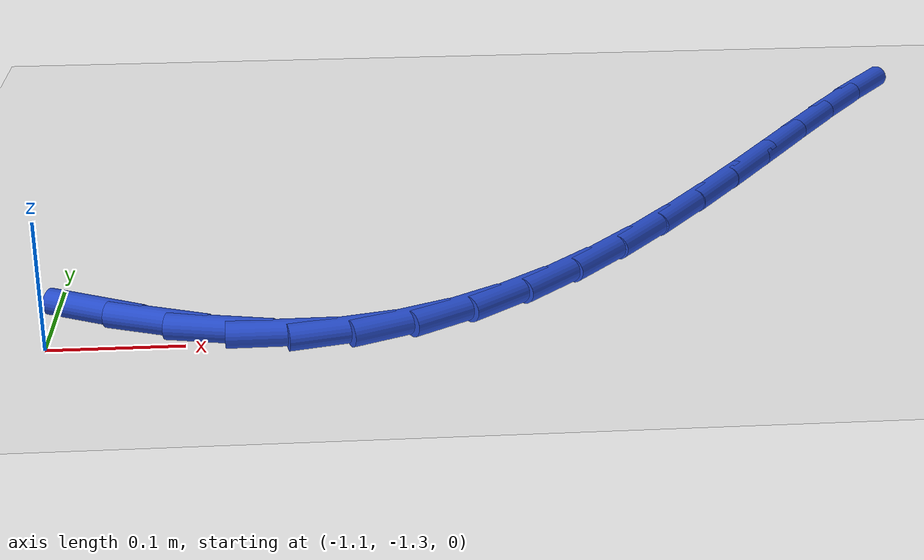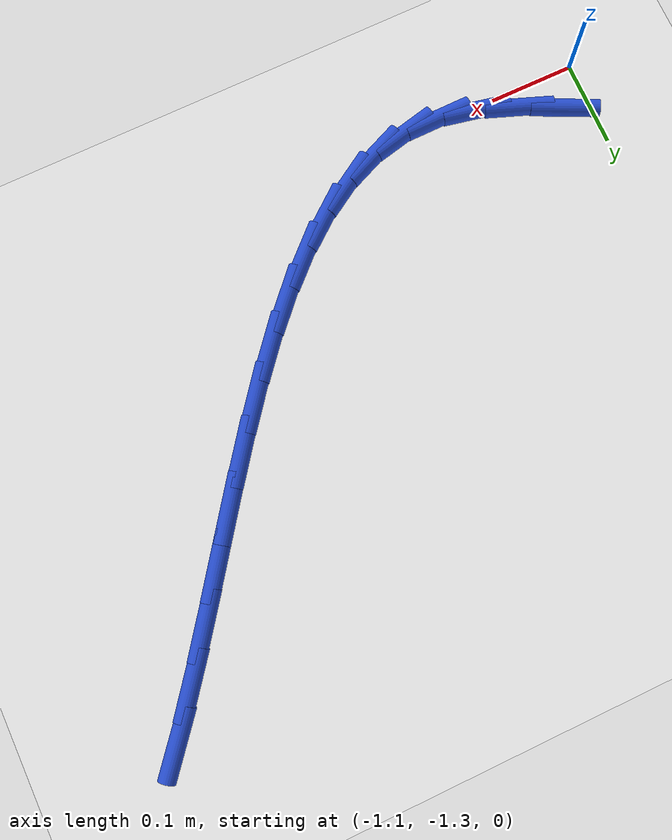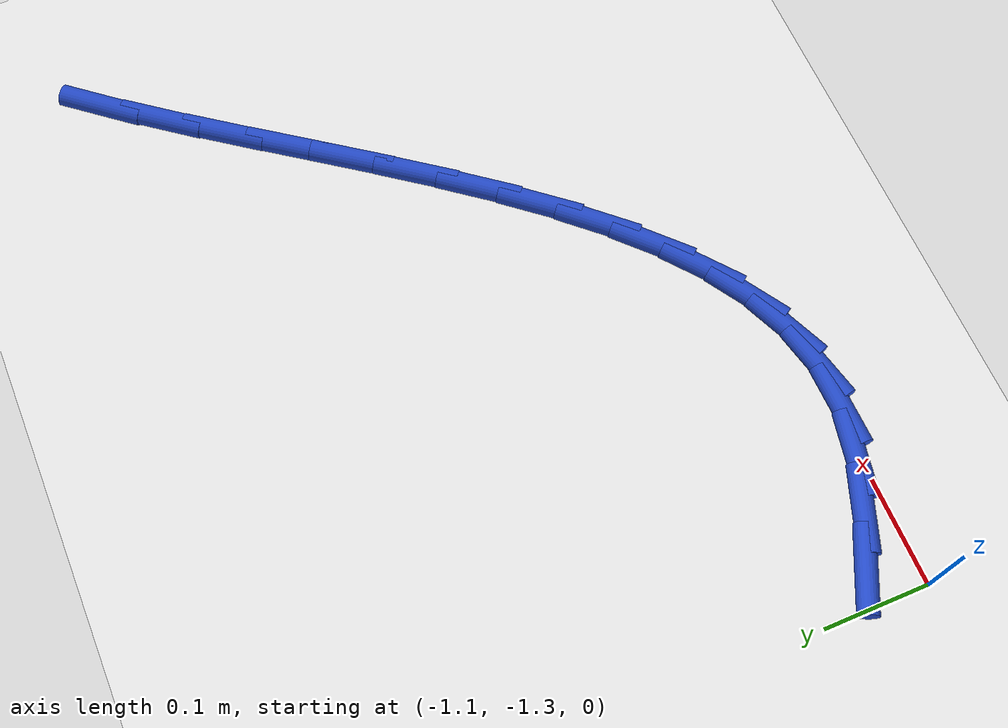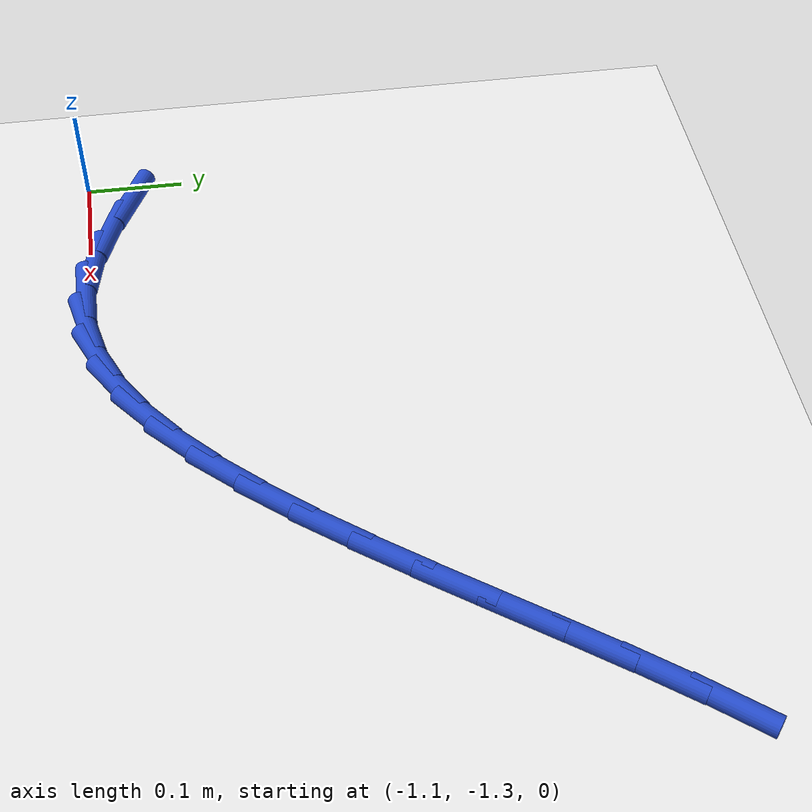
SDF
<sdf version="1.6">
 <world name="default">
  <model name="ground_plane">
   <static>1</static>
   <link name="link">
    <collision name="collision">
     <geometry><plane><normal>0 0 1</normal><size>100 100</size></plane></geometry>
     <surface><friction><ode><mu>100</mu><mu2>50</mu2></ode></friction></surface>
    </collision>
    <visual name="visual">
     <cast_shadows>0</cast_shadows>
     <geometry><plane><normal>0 0 1</normal><size>100 100</size></plane></geometry>
     <material>
      <script><uri>file://media/materials/scripts/gazebo.material</uri><name>Gazebo/WhiteGlow</name></script>
     </material>
    </visual>
   </link>
  </model>
  <model name="line">
   <link name="link_106">
    <pose>-1.0692283008388985 -1.253900558885618 0.01 0 1.57 -0.4510306179335462</pose>
    <collision name="collision">
     <geometry><cylinder><radius>0.01</radius><length>0.08</length></cylinder></geometry>
    </collision>
    <visual name="visual">
     <material>
      <script><name>Gazebo/Blue</name><uri>file://media/materials/scripts/gazebo.material</uri></script>
     </material>
     <geometry><cylinder><radius>0.01</radius><length>0.08</length></cylinder></geometry>
    </visual>
   </link>
   <link name="link_107">
    <pose>-1.0216545581802756 -1.2769417976113893 0.01 0 1.57 -0.3602650233102274</pose>
    <collision name="collision">
     <geometry><cylinder><radius>0.01</radius><length>0.08</length></cylinder></geometry>
    </collision>
    <visual name="visual">
     <material>
      <script><name>Gazebo/Blue</name><uri>file://media/materials/scripts/gazebo.material</uri></script>
     </material>
     <geometry><cylinder><radius>0.01</radius><length>0.08</length></cylinder></geometry>
    </visual>
   </link>
   <link name="link_108">
    <pose>-0.9753919151832113 -1.2943691875176078 0.01 0 1.57 -0.20468393884491384</pose>
    <collision name="collision">
     <geometry><cylinder><radius>0.01</radius><length>0.08</length></cylinder></geometry>
    </collision>
    <visual name="visual">
     <material>
      <script><name>Gazebo/Blue</name><uri>file://media/materials/scripts/gazebo.material</uri></script>
     </material>
     <geometry><cylinder><radius>0.01</radius><length>0.08</length></cylinder></geometry>
    </visual>
   </link>
   <link name="link_109">
    <pose>-0.9304211374312464 -1.3037047213664672 0.01 0 1.57 0.010285213302122773</pose>
    <collision name="collision">
     <geometry><cylinder><radius>0.01</radius><length>0.08</length></cylinder></geometry>
    </collision>
    <visual name="visual">
     <material>
      <script><name>Gazebo/Blue</name><uri>file://media/materials/scripts/gazebo.material</uri></script>
     </material>
     <geometry><cylinder><radius>0.01</radius><length>0.08</length></cylinder></geometry>
    </visual>
   </link>
   <link name="link_110">
    <pose>-0.8867035272631703 -1.3032550605648365 0.01 0 1.57 0.22406931331940205</pose>
    <collision name="collision">
     <geometry><cylinder><radius>0.01</radius><length>0.08</length></cylinder></geometry>
    </collision>
    <visual name="visual">
     <material>
      <script><name>Gazebo/Blue</name><uri>file://media/materials/scripts/gazebo.material</uri></script>
     </material>
     <geometry><cylinder><radius>0.01</radius><length>0.08</length></cylinder></geometry>
    </visual>
   </link>
   <link name="link_111">
    <pose>-0.8441450907717388 -1.2935561572150283 0.01 0 1.57 0.4096040741998444</pose>
    <collision name="collision">
     <geometry><cylinder><radius>0.01</radius><length>0.08</length></cylinder></geometry>
    </collision>
    <visual name="visual">
     <material>
      <script><name>Gazebo/Blue</name><uri>file://media/materials/scripts/gazebo.material</uri></script>
     </material>
     <geometry><cylinder><radius>0.01</radius><length>0.08</length></cylinder></geometry>
    </visual>
   </link>
   <link name="link_112">
    <pose>-0.8026420803781865 -1.2755371866619958 0.01 0 1.57 0.5597560949550654</pose>
    <collision name="collision">
     <geometry><cylinder><radius>0.01</radius><length>0.08</length></cylinder></geometry>
    </collision>
    <visual name="visual">
     <material>
      <script><name>Gazebo/Blue</name><uri>file://media/materials/scripts/gazebo.material</uri></script>
     </material>
     <geometry><cylinder><radius>0.01</radius><length>0.08</length></cylinder></geometry>
    </visual>
   </link>
   <link name="link_113">
    <pose>-0.7620907485037469 -1.2501273242506912 0.01 0 1.57 0.6764105276142675</pose>
    <collision name="collision">
     <geometry><cylinder><radius>0.01</radius><length>0.08</length></cylinder></geometry>
    </collision>
    <visual name="visual">
     <material>
      <script><name>Gazebo/Blue</name><uri>file://media/materials/scripts/gazebo.material</uri></script>
     </material>
     <geometry><cylinder><radius>0.01</radius><length>0.08</length></cylinder></geometry>
    </visual>
   </link>
   <link name="link_114">
    <pose>-0.7223873475696558 -1.2182557453260678 0.01 0 1.57 0.7650365264053967</pose>
    <collision name="collision">
     <geometry><cylinder><radius>0.01</radius><length>0.08</length></cylinder></geometry>
    </collision>
    <visual name="visual">
     <material>
      <script><name>Gazebo/Blue</name><uri>file://media/materials/scripts/gazebo.material</uri></script>
     </material>
     <geometry><cylinder><radius>0.01</radius><length>0.08</length></cylinder></geometry>
    </visual>
   </link>
   <link name="link_115">
    <pose>-0.6834281299971465 -1.1808516252330787 0.01 0 1.57 0.8312874423611386</pose>
    <collision name="collision">
     <geometry><cylinder><radius>0.01</radius><length>0.08</length></cylinder></geometry>
    </collision>
    <visual name="visual">
     <material>
      <script><name>Gazebo/Blue</name><uri>file://media/materials/scripts/gazebo.material</uri></script>
     </material>
     <geometry><cylinder><radius>0.01</radius><length>0.08</length></cylinder></geometry>
    </visual>
   </link>
   <link name="link_116">
    <pose>-0.6451093482074537 -1.138844139316676 0.01 0 1.57 0.8797639051455217</pose>
    <collision name="collision">
     <geometry><cylinder><radius>0.01</radius><length>0.08</length></cylinder></geometry>
    </collision>
    <visual name="visual">
     <material>
      <script><name>Gazebo/Blue</name><uri>file://media/materials/scripts/gazebo.material</uri></script>
     </material>
     <geometry><cylinder><radius>0.01</radius><length>0.08</length></cylinder></geometry>
    </visual>
   </link>
   <link name="link_117">
    <pose>-0.607327254621811 -1.0931624629218126 0.01 0 1.57 0.9138324815425724</pose>
    <collision name="collision">
     <geometry><cylinder><radius>0.01</radius><length>0.08</length></cylinder></geometry>
    </collision>
    <visual name="visual">
     <material>
      <script><name>Gazebo/Blue</name><uri>file://media/materials/scripts/gazebo.material</uri></script>
     </material>
     <geometry><cylinder><radius>0.01</radius><length>0.08</length></cylinder></geometry>
    </visual>
   </link>
   <link name="link_118">
    <pose>-0.5699781016614538 -1.0447357713934422 0.01 0 1.57 0.9357805902579658</pose>
    <collision name="collision">
     <geometry><cylinder><radius>0.01</radius><length>0.08</length></cylinder></geometry>
    </collision>
    <visual name="visual">
     <material>
      <script><name>Gazebo/Blue</name><uri>file://media/materials/scripts/gazebo.material</uri></script>
     </material>
     <geometry><cylinder><radius>0.01</radius><length>0.08</length></cylinder></geometry>
    </visual>
   </link>
   <link name="link_119">
    <pose>-0.5329581417476158 -0.9944932400765167 0.01 0 1.57 0.9470116943802864</pose>
    <collision name="collision">
     <geometry><cylinder><radius>0.01</radius><length>0.08</length></cylinder></geometry>
    </collision>
    <visual name="visual">
     <material>
      <script><name>Gazebo/Blue</name><uri>file://media/materials/scripts/gazebo.material</uri></script>
     </material>
     <geometry><cylinder><radius>0.01</radius><length>0.08</length></cylinder></geometry>
    </visual>
   </link>
   <link name="link_120">
    <pose>-0.49616362730153135 -0.9433640443159896 0.01 0 1.57 0.9481875839822845</pose>
    <collision name="collision">
     <geometry><cylinder><radius>0.01</radius><length>0.08</length></cylinder></geometry>
    </collision>
    <visual name="visual">
     <material>
      <script><name>Gazebo/Blue</name><uri>file://media/materials/scripts/gazebo.material</uri></script>
     </material>
     <geometry><cylinder><radius>0.01</radius><length>0.08</length></cylinder></geometry>
    </visual>
   </link>
   <link name="link_121">
    <pose>-0.4594908107444349 -0.8922773594568134 0.01 0 1.57 0.9392960455164352</pose>
    <collision name="collision">
     <geometry><cylinder><radius>0.01</radius><length>0.08</length></cylinder></geometry>
    </collision>
    <visual name="visual">
     <material>
      <script><name>Gazebo/Blue</name><uri>file://media/materials/scripts/gazebo.material</uri></script>
     </material>
     <geometry><cylinder><radius>0.01</radius><length>0.08</length></cylinder></geometry>
    </visual>
   </link>
   <link name="link_122">
    <pose>-0.4228359444975602 -0.8421623608439405 0.01 0 1.57 0.919639784262716</pose>
    <collision name="collision">
     <geometry><cylinder><radius>0.01</radius><length>0.08</length></cylinder></geometry>
    </collision>
    <visual name="visual">
     <material>
      <script><name>Gazebo/Blue</name><uri>file://media/materials/scripts/gazebo.material</uri></script>
     </material>
     <geometry><cylinder><radius>0.01</radius><length>0.08</length></cylinder></geometry>
    </visual>
   </link>
   <link name="link_123">
    <pose>-0.3860952809821425 -0.7939482238223247 0.01 0 1.57 0.889377725205217</pose>
    <collision name="collision">
     <geometry><cylinder><radius>0.01</radius><length>0.08</length></cylinder></geometry>
    </collision>
    <visual name="visual">
     <material>
      <script><name>Gazebo/Blue</name><uri>file://media/materials/scripts/gazebo.material</uri></script>
     </material>
     <geometry><cylinder><radius>0.01</radius><length>0.08</length></cylinder></geometry>
    </visual>
   </link>
  </model>
 </world>
</sdf>
